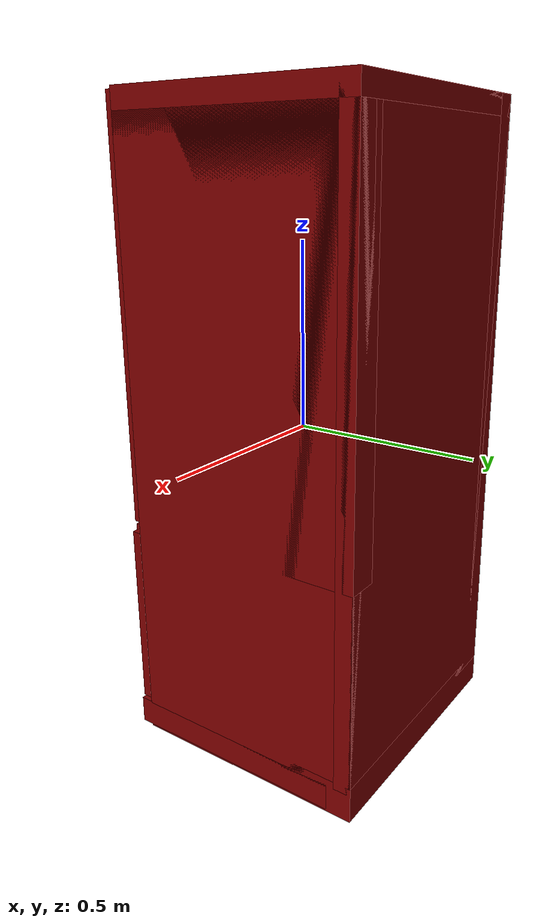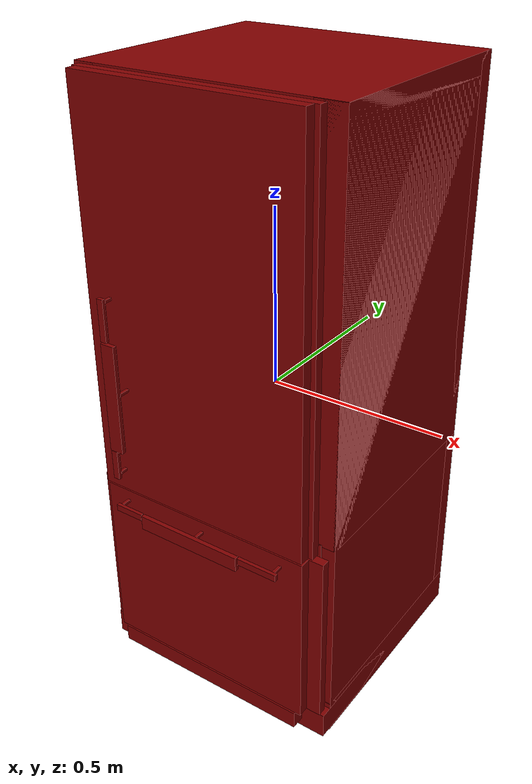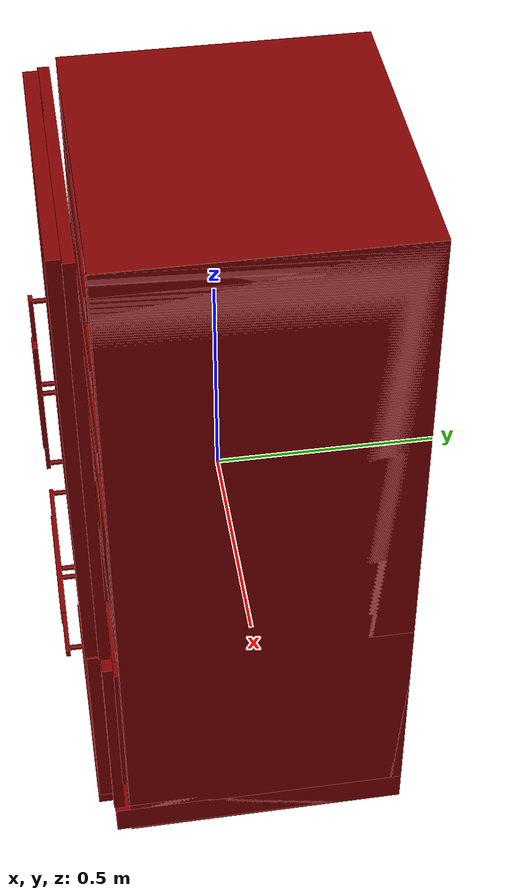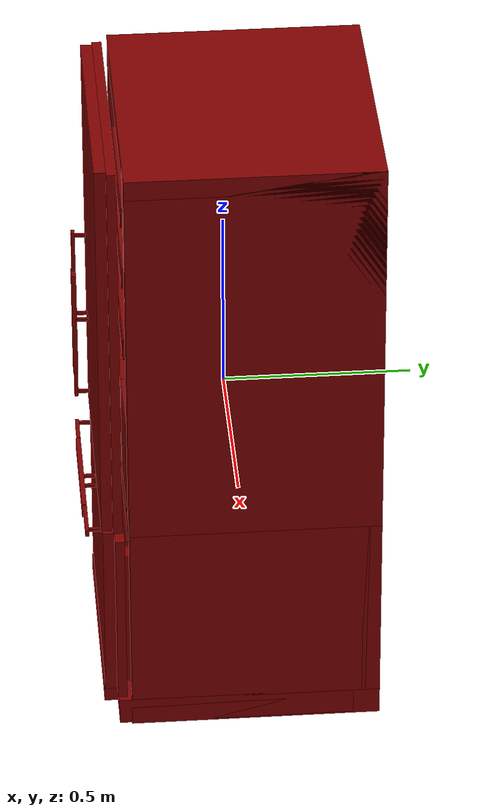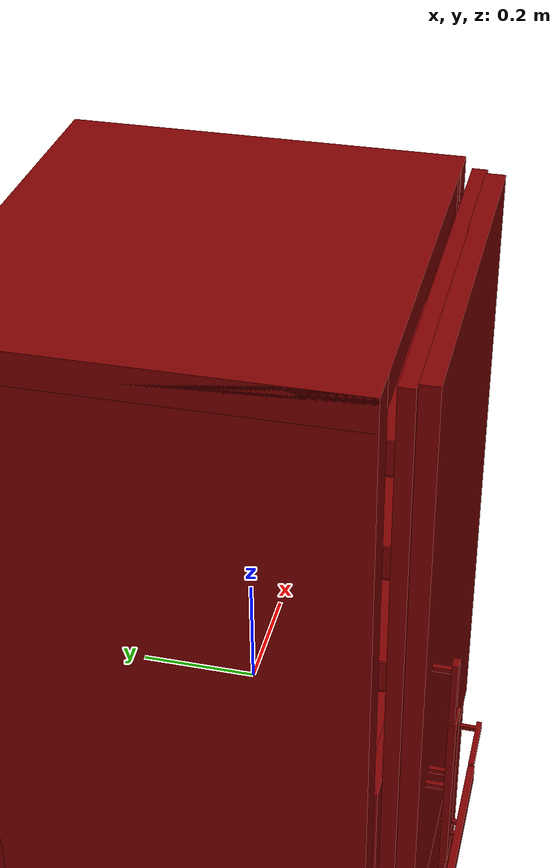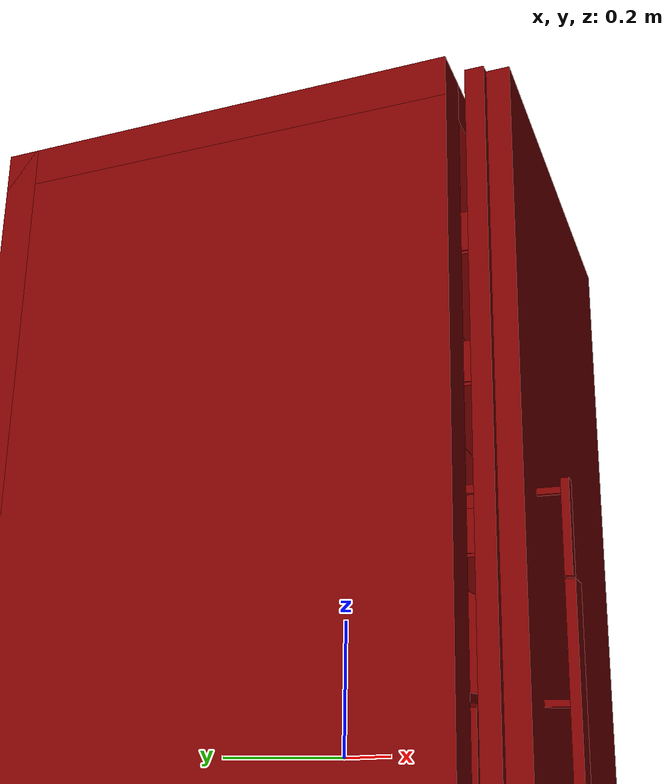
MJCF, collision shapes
<?xml version='1.0' encoding='UTF-8'?>
<mujoco model="model">
  <option timestep="0.002" gravity="0.0 0.0 -9.81"/>
  <compiler angle="radian"/>
  <asset>
    <mesh file="visuals/freezer0.obj" name="freezer0_vis"/>
    <mesh file="visuals/fridge_door.obj" name="fridge_door_vis"/>
    <mesh file="visuals/fridge_door_Clear.obj" name="fridge_door_Clear_vis"/>
    <mesh file="visuals/fridge_drawer0.obj" name="fridge_drawer0_vis"/>
    <mesh file="visuals/Body001.obj" name="Body001_vis"/>
    <mesh file="visuals/Body001_Clear.obj" name="Body001_Clear_vis"/>
    <texture file="visuals/T_BC001.png" name="Body001_material" type="2d"/>
    <material name="Body001_material" rgba="1 1 1 1.0" texture="Body001_material" shininess="0.4472135901451111" specular="2"/>
    <texture file="visuals/T_BC001.png" name="freezer0_material" type="2d"/>
    <material name="freezer0_material" rgba="1 1 1 1.0" texture="freezer0_material" shininess="0.4472135901451111" specular="2"/>
    <texture file="visuals/T_BC001.png" name="fridge_door_material" type="2d"/>
    <material name="fridge_door_material" rgba="1 1 1 1.0" texture="fridge_door_material" shininess="0.4472135901451111" specular="2"/>
    <texture file="visuals/T_BC001.png" name="fridge_door_Clear_material" type="2d"/>
    <material name="fridge_door_Clear_material" rgba="1 1 1 0.684210479259491" texture="fridge_door_Clear_material" shininess="0.4472135901451111" specular="0.3103448502657381"/>
    <texture file="visuals/T_BC001.png" name="fridge_drawer0_material" type="2d"/>
    <material name="fridge_drawer0_material" rgba="1 1 1 1.0" texture="fridge_drawer0_material" shininess="0.4472135901451111" specular="0.3103448502657381"/>
    <texture file="visuals/T_BC001.png" name="Body001_Clear_material" type="2d"/>
    <material name="Body001_Clear_material" rgba="1 1 1 0.684210479259491" texture="Body001_Clear_material" shininess="0.4472135901451111" specular="0.3103448502657381"/>
  </asset>
  <default>
    <default class="visual">
      <geom conaffinity="0" contype="0" group="1" type="mesh"/>
    </default>
    <default class="collision">
      <geom group="0" rgba="0.5 0 0 0.5"/>
    </default>
    <default class="spawn">
      <geom group="0" rgba="1 1 1 0.5" contype="0" conaffinity="0"/>
      <site group="0" rgba="1 1 1 0.5"/>
    </default>
    <default class="region">
      <geom group="1" conaffinity="0" contype="0" rgba="0 1 0 0"/>
    </default>
  </default>
  <worldbody>
    <body>
      <body name="object">
        <geom mesh="Body001_vis" type="mesh" solimp="0.998 0.998 0.001" solref="0.001 1" friction="0.95 0.3 0.1" class="visual" material="Body001_material"/>
        <geom class="collision" type="box" pos="-0.008380072191357613 0.08149967342615128 0.08599872142076492" size="0.2998574674129486 0.2620874047279358 0.006721177604049444" quat="1.0 0.0 0.0 0.0"/>
        <geom class="collision" type="box" pos="-3.91155481338501e-08 0.057391222566366196 0.8288622498512268" size="0.3684081733226776 0.33341071009635925 0.02726900391280651" quat="1.0 0.0 0.0 0.0"/>
        <geom class="collision" type="box" pos="-0.33900633454322815 0.05739118531346321 0.03808841109275818" size="0.029401803389191628 0.33341073989868164 0.8177698254585266" quat="1.0 0.0 0.0 0.0"/>
        <geom class="collision" type="box" pos="0.3272069990634918 0.05739106237888336 0.3080085515975952" size="0.041201114654541016 0.3334108591079712 0.5471699237823486" quat="1.0 0.0 0.0 0.0"/>
        <geom class="collision" type="box" pos="-3.075547283515334e-08 0.3663614094257355 0.03808841109275818" size="0.3684081435203552 0.02444051206111908 0.8177712559700012" quat="1.0 0.0 0.0 0.0"/>
        <geom class="collision" type="box" pos="-2.779779606498778e-08 0.05682733282446861 -0.8082326650619507" size="0.3684081435203552 0.33397459983825684 0.04789847135543823" quat="1.0 0.0 0.0 0.0"/>
        <geom class="collision" type="box" pos="-1.641456037759781e-08 0.004995355382561684 -0.8137256503105164" size="0.3684081435203552 0.3149847984313965 0.037690721452236176" quat="1.0 0.0 0.0 0.0"/>
        <geom class="collision" type="box" pos="-0.004369916394352913 -0.03211843967437744 -0.8017321825027466" size="0.30200138688087463 0.3148287534713745 0.02569722943007946" quat="1.0 0.0 0.0 0.0"/>
        <geom class="collision" type="box" pos="0.00019864225760102272 0.03361191228032112 -0.25786349177360535" size="0.32931435108184814 0.3118056058883667 0.024508919566869736" quat="1.0 0.0 0.0 0.0"/>
        <geom class="collision" type="box" pos="-0.011859938502311707 0.0863306075334549 0.47884562611579895" size="0.31725484132766724 0.26570069789886475 0.007290575187653303" quat="1.0 0.0 0.0 0.0"/>
        <geom class="collision" type="box" pos="0.2815364599227905 0.08237583935260773 0.06986159831285477" size="0.0058013033121824265 0.25671061873435974 0.008075063116848469" quat="1.0 0.0 0.0 0.0"/>
        <geom class="collision" type="box" pos="-0.3056296408176422 0.08237583935260773 0.06986159831285477" size="0.005801303777843714 0.25671061873435974 0.008075063116848469" quat="1.0 0.0 0.0 0.0"/>
        <geom class="collision" type="box" pos="0.2815364599227905 0.08664015680551529 0.4610927700996399" size="0.0058013033121824265 0.2524462938308716 0.008075063116848469" quat="1.0 0.0 0.0 0.0"/>
        <geom class="collision" type="box" pos="-0.3056296408176422 0.08664015680551529 0.4610927700996399" size="0.005801303777843714 0.2524462938308716 0.008075063116848469" quat="1.0 0.0 0.0 0.0"/>
        <geom class="collision" type="box" pos="0.33891189098358154 0.05739106237888336 0.03774818405508995" size="0.029496241360902786 0.3334108591079712 0.817430317401886" quat="1.0 0.0 0.0 0.0"/>
        <body name="freezer0">
          <geom class="region" name="reg_freezer0" type="box" pos="0.0020723193883895874 0.004428073763847351 -0.531778946518898" size="0.25385492837429047 0.2680537382364273 0.17981576716899872"/>
          <joint axis="0.0 -1.0 0.0" pos="0.001238696277141571 -0.04341490566730499 -0.5157626271247864" limited="true" name="freezer0_door_joint" range="0.0 0.4" type="slide" damping="1" frictionloss="1" armature=".01" stiffness="0.05"/>
          <geom mesh="freezer0_vis" type="mesh" solimp="0.998 0.998 0.001" solref="0.001 1" friction="0.95 0.3 0.1" class="visual" material="freezer0_material"/>
          <geom class="collision" type="box" pos="-0.0021906900219619274 -0.3009081482887268 -0.5172630548477173" size="0.3597579896450043 0.012597385793924332 0.25634488463401794" quat="1.0 0.0 0.0 0.0"/>
          <geom class="collision" type="box" pos="-0.003819168545305729 -0.32767152786254883 -0.5172630548477173" size="0.3194584548473358 0.016279790550470352 0.25634488463401794" quat="1.0 0.0 0.0 0.0" name="freezer0_door_main"/>
          <geom class="collision" type="box" pos="-0.01105424389243126 -0.3837423622608185 -0.3053782284259796" size="0.15594571828842163 0.006301120389252901 0.020343100652098656" quat="1.0 0.0 0.0 0.0" name="freezer0_door_handle_main"/>
          <geom class="collision" type="box" pos="0.20729416608810425 -0.38247057795524597 -0.2936547100543976" size="0.05818188190460205 0.005029338411986828 0.009289508685469627" quat="1.0 0.0 0.0 0.0" name="freezer0_door_handle_2"/>
          <geom class="collision" type="box" pos="0.004607485607266426 -0.36371147632598877 -0.3228965699672699" size="0.004091770853847265 0.016636690124869347 0.004091770853847265" quat="1.0 0.0 0.0 0.0" name="freezer0_door_handle_6"/>
          <geom class="collision" type="box" pos="0.004607485607266426 -0.36371147632598877 -0.29110974073410034" size="0.004091766197234392 0.016636671498417854 0.004091766197234392" quat="1.0 0.0 0.0 0.0" name="freezer0_door_handle_5"/>
          <geom class="collision" type="box" pos="-0.2488274872303009 -0.36371147632598877 -0.29110974073410034" size="0.004091762006282806 0.01663665473461151 0.004091762006282806" quat="1.0 0.0 0.0 0.0" name="freezer0_door_handle_3"/>
          <geom class="collision" type="box" pos="0.25177282094955444 -0.36371147632598877 -0.2906530797481537" size="0.004091757349669933 0.01663663610816002 0.004091757349669933" quat="1.0 0.0 0.0 0.0" name="freezer0_door_handle_4"/>
          <geom class="collision" type="box" pos="0.28429457545280457 0.003940756432712078 -0.550811767578125" size="0.02178111858665943 0.30003130435943604 0.2052350640296936" quat="1.0 0.0 0.0 0.0"/>
          <geom class="collision" type="box" pos="-0.28018274903297424 0.003985525108873844 -0.550811767578125" size="0.022151291370391846 0.30007606744766235 0.20523516833782196" quat="1.0 0.0 0.0 0.0"/>
          <geom class="collision" type="box" pos="-0.008176805451512337 0.2917923629283905 -0.550811767578125" size="0.28934913873672485 0.01289528701454401 0.20523527264595032" quat="1.0 0.0 0.0 0.0"/>
          <geom class="collision" type="box" pos="-0.008176805451512337 0.0005150511860847473 -0.7381628155708313" size="0.28934913873672485 0.30308669805526733 0.020016659051179886" quat="1.0 0.0 0.0 0.0"/>
          <geom class="collision" type="box" pos="-0.21363317966461182 -0.38247057795524597 -0.2936547100543976" size="0.0432395301759243 0.005029338411986828 0.009289508685469627" quat="1.0 0.0 0.0 0.0" name="freezer0_door_handle_1"/>
        </body>
        <body name="fridge_door">
          <joint axis="0.0 0.0 1.0" pos="0.336078941822052 -0.3208591043949127 0.30071282386779785" limited="true" name="fridge_door_joint" range="0.0 1.5707963267948966" type="hinge" damping="1" frictionloss="1" armature=".01" stiffness="0.05"/>
          <geom mesh="fridge_door_vis" type="mesh" solimp="0.998 0.998 0.001" solref="0.001 1" friction="0.95 0.3 0.1" class="visual" material="fridge_door_material"/>
          <geom class="collision" type="box" pos="0.0016738609410822392 -0.23115472495555878 0.6491342782974243" size="0.24514779448509216 0.04812924936413765 0.002827999647706747" quat="1.0 0.0 0.0 0.0"/>
          <geom class="collision" type="box" pos="0.001491784816607833 -0.23134592175483704 0.46487146615982056" size="0.24514779448509216 0.04812924936413765 0.0028281155973672867" quat="1.0 0.0 0.0 0.0"/>
          <geom class="collision" type="box" pos="0.001491784816607833 -0.23134592175483704 0.24359279870986938" size="0.24514779448509216 0.04812924936413765 0.002827954711392522" quat="1.0 0.0 0.0 0.0"/>
          <geom class="collision" type="box" pos="0.0016743817832320929 -0.1834477037191391 0.6786073446273804" size="0.2451341152191162 0.0033585382625460625 0.027968846261501312" quat="1.0 0.0 0.0 0.0"/>
          <geom class="collision" type="box" pos="0.001492934999987483 -0.18363890051841736 0.49434366822242737" size="0.24513432383537292 0.003358540590852499 0.027968786656856537" quat="1.0 0.0 0.0 0.0"/>
          <geom class="collision" type="box" pos="0.0014923056587576866 -0.18363890051841736 0.27306485176086426" size="0.24513454735279083 0.0033585429191589355 0.02796880528330803" quat="1.0 0.0 0.0 0.0"/>
          <geom class="collision" type="box" pos="0.0016738609410822392 -0.2781522870063782 0.6786073446273804" size="0.24514888226985931 0.0011944178259000182 0.027969827875494957" quat="1.0 0.0 0.0 0.0"/>
          <geom class="collision" type="box" pos="0.001491784816607833 -0.2783434987068176 0.4943440556526184" size="0.24514888226985931 0.0011944178259000182 0.027969829738140106" quat="1.0 0.0 0.0 0.0"/>
          <geom class="collision" type="box" pos="0.001491784816607833 -0.2783434987068176 0.2730652391910553" size="0.24514888226985931 0.0011944178259000182 0.027969826012849808" quat="1.0 0.0 0.0 0.0"/>
          <geom class="collision" type="box" pos="0.24519343674182892 -0.2304575890302658 0.6786073446273804" size="0.002283500973135233 0.04793621972203255 0.027969839051365852" quat="1.0 0.0 0.0 0.0"/>
          <geom class="collision" type="box" pos="0.2450113594532013 -0.23064878582954407 0.4943440556526184" size="0.002283500973135233 0.04793621972203255 0.027969837188720703" quat="1.0 0.0 0.0 0.0"/>
          <geom class="collision" type="box" pos="0.2450113594532013 -0.23064878582954407 0.2730652391910553" size="0.002283500973135233 0.04793621972203255 0.027969839051365852" quat="1.0 0.0 0.0 0.0"/>
          <geom class="collision" type="box" pos="-0.24362261593341827 -0.23076848685741425 0.6786073446273804" size="0.002009796677157283 0.047936297953128815 0.027969839051365852" quat="1.0 0.0 0.0 0.0"/>
          <geom class="collision" type="box" pos="-0.2438046932220459 -0.2309596836566925 0.4943440556526184" size="0.002009796677157283 0.047936297953128815 0.027969837188720703" quat="1.0 0.0 0.0 0.0"/>
          <geom class="collision" type="box" pos="-0.2438046932220459 -0.2309596836566925 0.2730652391910553" size="0.002009796677157283 0.047936297953128815 0.027969839051365852" quat="1.0 0.0 0.0 0.0"/>
          <geom class="collision" type="box" pos="-0.003472934477031231 -0.3044854700565338 0.30110591650009155" size="0.332180380821228 0.012597385793924332 0.5540650486946106" quat="1.0 0.0 0.0 0.0"/>
          <geom class="collision" type="box" pos="-0.003819168545305729 -0.33124884963035583 0.30110591650009155" size="0.3194584548473358 0.016279790550470352 0.5540650486946106" quat="1.0 0.0 0.0 0.0" name="fridge_door_main"/>
          <geom class="collision" type="box" pos="-0.23603764176368713 -0.38361209630966187 0.05016902834177017" size="0.0203431136906147 0.006301120389252901 0.15594571828842163" quat="1.0 0.0 0.0 0.0" name="fridge_door_handle_main"/>
          <geom class="collision" type="box" pos="-0.24776116013526917 -0.38234031200408936 0.2680627405643463" size="0.009289528243243694 0.005029338411986828 0.058636587113142014" quat="1.0 0.0 0.0 0.0" name="fridge_door_handle_2"/>
          <geom class="collision" type="box" pos="-0.21851930022239685 -0.36358121037483215 0.065830759704113" size="0.004091718699783087 0.016636477783322334 0.004091718699783087" quat="1.0 0.0 0.0 0.0" name="fridge_door_handle_5"/>
          <geom class="collision" type="box" pos="-0.2503061294555664 -0.36358121037483215 0.065830759704113" size="0.004091714043170214 0.01663646101951599 0.004091714043170214" quat="1.0 0.0 0.0 0.0" name="fridge_door_handle_4"/>
          <geom class="collision" type="box" pos="-0.2503061592578888 -0.36358121037483215 -0.18760421872138977" size="0.004091709852218628 0.016636444255709648 0.004091709852218628" quat="1.0 0.0 0.0 0.0" name="fridge_door_handle_3"/>
          <geom class="collision" type="box" pos="-0.25076279044151306 -0.36358121037483215 0.31299611926078796" size="0.004091705195605755 0.016636425629258156 0.004091705195605755" quat="1.0 0.0 0.0 0.0" name="fridge_door_handle_6"/>
          <geom class="collision" type="box" pos="-0.24776116013526917 -0.38234031200408936 -0.15240001678466797" size="0.009289528243243694 0.005029338411986828 0.043249428272247314" quat="1.0 0.0 0.0 0.0" name="fridge_door_handle_1"/>
          <body name="fridge_door_Clear">
            <geom mesh="fridge_door_Clear_vis" type="mesh" solimp="0.998 0.998 0.001" solref="0.001 1" friction="0.95 0.3 0.1" class="visual" material="fridge_door_Clear_material"/>
            <geom class="collision" type="box" pos="0.0016738609410822392 -0.23115472495555878 0.6491342782974243" size="0.24514779448509216 0.04812924936413765 0.002827999647706747" quat="1.0 0.0 0.0 0.0"/>
            <geom class="collision" type="box" pos="0.001491784816607833 -0.23134592175483704 0.46487146615982056" size="0.24514779448509216 0.04812924936413765 0.0028281155973672867" quat="1.0 0.0 0.0 0.0"/>
            <geom class="collision" type="box" pos="0.001491784816607833 -0.23134592175483704 0.24359279870986938" size="0.24514779448509216 0.04812924936413765 0.002827954711392522" quat="1.0 0.0 0.0 0.0"/>
            <geom class="collision" type="box" pos="0.0016743817832320929 -0.1834477037191391 0.6786073446273804" size="0.2451341152191162 0.0033585382625460625 0.027968846261501312" quat="1.0 0.0 0.0 0.0"/>
            <geom class="collision" type="box" pos="0.001492934999987483 -0.18363890051841736 0.49434366822242737" size="0.24513432383537292 0.003358540590852499 0.027968786656856537" quat="1.0 0.0 0.0 0.0"/>
            <geom class="collision" type="box" pos="0.0014923056587576866 -0.18363890051841736 0.27306485176086426" size="0.24513454735279083 0.0033585429191589355 0.02796880528330803" quat="1.0 0.0 0.0 0.0"/>
            <geom class="collision" type="box" pos="0.0016738609410822392 -0.2781522870063782 0.6786073446273804" size="0.24514888226985931 0.0011944178259000182 0.027969827875494957" quat="1.0 0.0 0.0 0.0"/>
            <geom class="collision" type="box" pos="0.001491784816607833 -0.2783434987068176 0.4943440556526184" size="0.24514888226985931 0.0011944178259000182 0.027969829738140106" quat="1.0 0.0 0.0 0.0"/>
            <geom class="collision" type="box" pos="0.001491784816607833 -0.2783434987068176 0.2730652391910553" size="0.24514888226985931 0.0011944178259000182 0.027969826012849808" quat="1.0 0.0 0.0 0.0"/>
            <geom class="collision" type="box" pos="0.24519343674182892 -0.2304575890302658 0.6786073446273804" size="0.002283500973135233 0.04793621972203255 0.027969839051365852" quat="1.0 0.0 0.0 0.0"/>
            <geom class="collision" type="box" pos="0.2450113594532013 -0.23064878582954407 0.4943440556526184" size="0.002283500973135233 0.04793621972203255 0.027969837188720703" quat="1.0 0.0 0.0 0.0"/>
            <geom class="collision" type="box" pos="0.2450113594532013 -0.23064878582954407 0.2730652391910553" size="0.002283500973135233 0.04793621972203255 0.027969839051365852" quat="1.0 0.0 0.0 0.0"/>
            <geom class="collision" type="box" pos="-0.24362261593341827 -0.23076848685741425 0.6786073446273804" size="0.002009796677157283 0.047936297953128815 0.027969839051365852" quat="1.0 0.0 0.0 0.0"/>
            <geom class="collision" type="box" pos="-0.2438046932220459 -0.2309596836566925 0.4943440556526184" size="0.002009796677157283 0.047936297953128815 0.027969837188720703" quat="1.0 0.0 0.0 0.0"/>
            <geom class="collision" type="box" pos="-0.2438046932220459 -0.2309596836566925 0.2730652391910553" size="0.002009796677157283 0.047936297953128815 0.027969839051365852" quat="1.0 0.0 0.0 0.0"/>
          </body>
        </body>
        <body name="fridge_drawer0">
          <geom class="region" name="reg_fridge_drawer0" type="box" pos="-0.005733788013458252 0.019741445779800415 -0.08087208680808544" size="0.26981134510040283 0.2692212293148041 0.11538429541885853"/>
          <joint axis="0.0 -1.0 0.0" pos="-0.007659777998924255 0.01626100391149521 -0.08006958663463593" limited="true" name="fridge_drawer0_joint" range="0.0 0.4" type="slide" damping="1" frictionloss="1" armature=".01" stiffness="0.05"/>
          <geom mesh="fridge_drawer0_vis" type="mesh" solimp="0.998 0.998 0.001" solref="0.001 1" friction="0.95 0.3 0.1" class="visual" material="fridge_drawer0_material"/>
          <geom class="collision" type="box" pos="-0.004055939614772797 0.30584946274757385 -0.08487293124198914" size="0.2809869349002838 0.003392008598893881 0.12481261789798737" quat="1.0 0.0 0.0 0.0"/>
          <geom class="collision" type="box" pos="-0.28777724504470825 0.018514543771743774 -0.08487293124198914" size="0.004088165704160929 0.28358060121536255 0.12481234967708588" quat="1.0 0.0 0.0 0.0"/>
          <geom class="collision" type="box" pos="0.2733392119407654 0.018514543771743774 -0.08487293124198914" size="0.0037448115181177855 0.2835802733898163 0.124812051653862" quat="1.0 0.0 0.0 0.0"/>
          <geom class="collision" type="box" pos="-0.0074922069907188416 0.018514543771743774 -0.20623084902763367" size="0.28098592162132263 0.28357991576194763 0.003200273960828781" quat="1.0 0.0 0.0 0.0"/>
          <geom class="collision" type="box" pos="-0.004416897892951965 -0.2672726511955261 -0.08005732297897339" size="0.07190626859664917 0.005427333060652018 0.03301795572042465" quat="0.9871617555618286 -0.15972371399402618 0.0 0.0"/>
          <geom class="collision" type="box" pos="-0.18301084637641907 -0.2674119770526886 -0.07794596999883652" size="0.10668791830539703 0.010428210720419884 0.13915765285491943" quat="1.0 0.0 0.0 0.0"/>
          <geom class="collision" type="box" pos="-0.004416878800839186 -0.2674119770526886 -0.16674326360225677" size="0.07190637290477753 0.010428194887936115 0.05014730989933014" quat="1.0 0.0 0.0 0.0"/>
          <geom class="collision" type="box" pos="-0.004416878800839186 -0.2674119770526886 0.006679685786366463" size="0.07190635800361633 0.01042819581925869 0.054531875997781754" quat="1.0 0.0 0.0 0.0"/>
          <geom class="collision" type="box" pos="0.1727239042520523 -0.2674119770526886 -0.07794596999883652" size="0.1052345409989357 0.010428205132484436 0.13915756344795227" quat="1.0 0.0 0.0 0.0"/>
          <geom class="collision" type="box" pos="-0.004416897892951965 -0.25877469778060913 -0.08137184381484985" size="0.07190626859664917 0.0022927906829863787 0.03352512791752815" quat="1.0 0.0 0.0 0.0"/>
        </body>
        <body name="Body001_Clear">
          <geom mesh="Body001_Clear_vis" type="mesh" solimp="0.998 0.998 0.001" solref="0.001 1" friction="0.95 0.3 0.1" class="visual" material="Body001_Clear_material"/>
          <geom class="collision" type="box" pos="-0.008380072191357613 0.08149967342615128 0.08599872142076492" size="0.2998574674129486 0.2620874047279358 0.006721177604049444" quat="1.0 0.0 0.0 0.0"/>
        </body>
        <geom class="region" name="reg_fridge_shelf0" type="box" pos="-0.011501103639602661 0.07839339971542358 0.2821936532855034" size="0.29170425033569336 0.2545969316959381 0.18416418677568436"/>
        <geom class="region" name="reg_fridge_shelf1" type="box" pos="-0.011532619595527649 0.07839339971542358 0.644178181886673" size="0.2916535416841507 0.2545969316959381 0.15240214562416077"/>
        <geom class="region" name="reg_main" type="box" pos="-7.450580596923828e-09 0.02015761286020279 0.0" size="0.36940811371803284 0.37164439058303833 0.8571311364173889"/>
      </body>
    </body>
  </worldbody>
  <actuator>
    <motor name="freezer0_door_joint_actuator" joint="freezer0_door_joint" gear="50"/>
    <motor name="fridge_door_joint_actuator" joint="fridge_door_joint" gear="50"/>
    <motor name="fridge_drawer0_joint_actuator" joint="fridge_drawer0_joint" gear="50"/>
  </actuator>
</mujoco>
